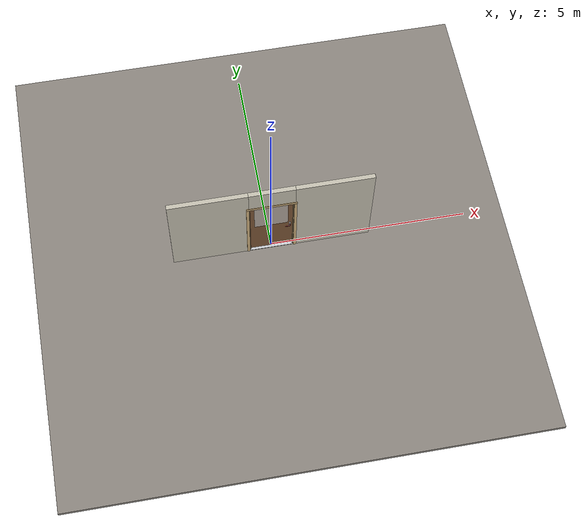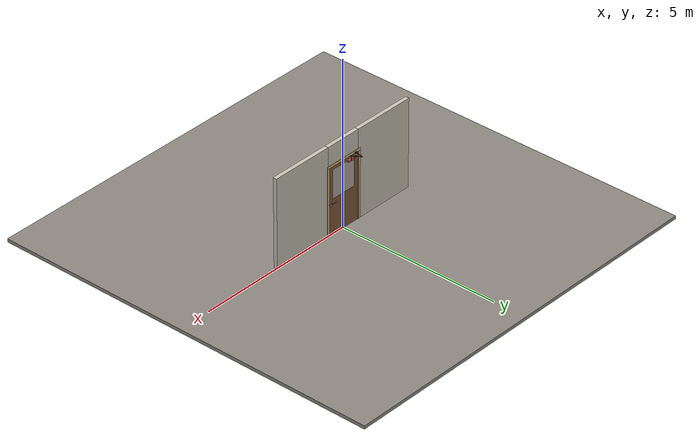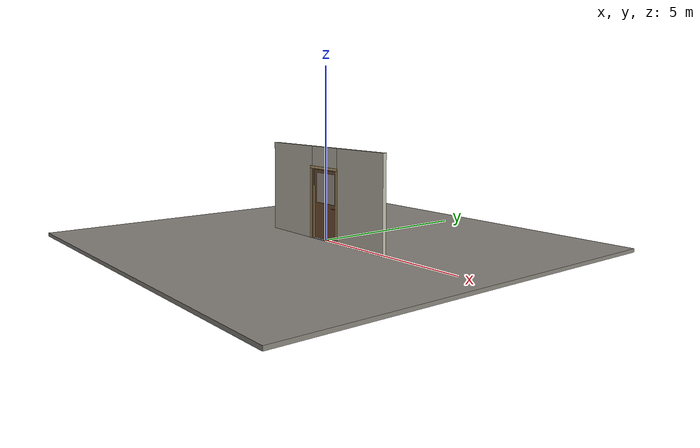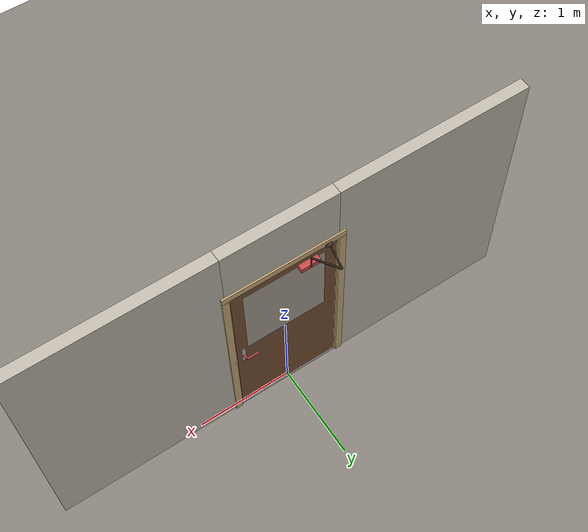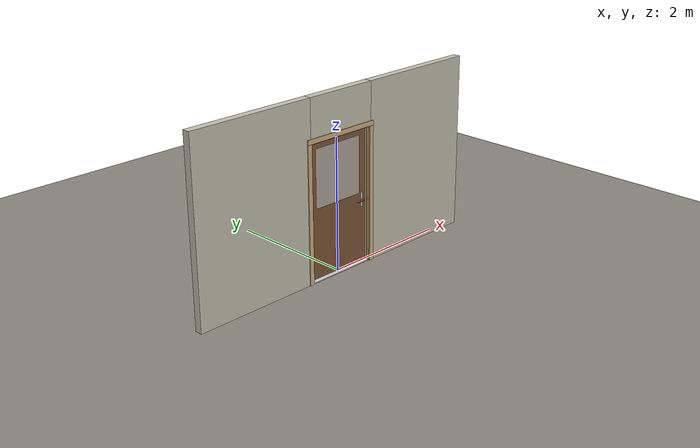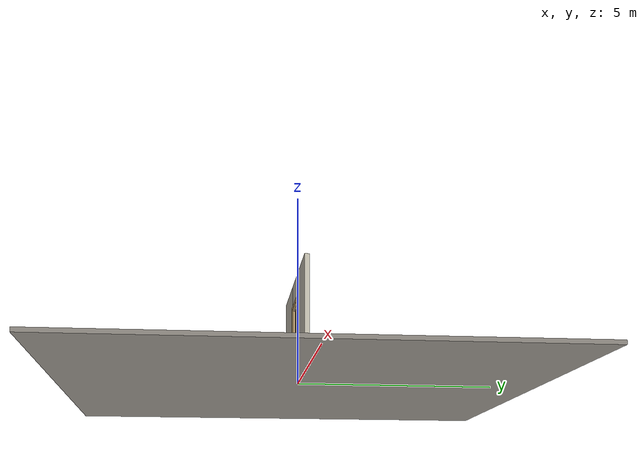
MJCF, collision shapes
<?xml version="1.0" ?>
<mujoco model="db0972_swing_single_full">
  <compiler angle="radian" meshdir="../../hardware" texturedir="../../textures" autolimits="true" inertiafromgeom="false"/>
  <option timestep="0.002" integrator="implicitfast" cone="elliptic" impratio="10" noslip_iterations="3">
    <flag multiccd="enable"/>
  </option>
  <size memory="16M"/>
  <default>
    <geom condim="4" solref="0.005 1" solimp="0.95 0.99 0.001"/>
    <joint solreflimit="0.005 1" solimplimit="0.95 0.99 0.001"/>
    <tendon solreflimit="0.005 1"/>
    <equality solref="0.002 1"/>
  </default>
  <visual>
    <headlight ambient="0.4 0.4 0.4" diffuse="0.7 0.7 0.7" specular="0.2 0.2 0.2"/>
    <quality shadowsize="4096"/>
    <map znear="0.01" zfar="60"/>
  </visual>
  <asset>
    <mesh name="closer_body_78399c60f5" file="closer_body_78399c60f5.obj"/>
    <mesh name="hinge_e22b26c0c1" file="hinge_e22b26c0c1.obj"/>
    <mesh name="hinge_jamb_e1d088f8dc" file="hinge_jamb_e1d088f8dc.obj"/>
    <mesh name="house_numbers_ad0a8e8be0" file="house_numbers_ad0a8e8be0.obj"/>
    <mesh name="lever_f913fc5b7b" file="lever_f913fc5b7b.obj"/>
    <material name="mat_floor" rgba="0.55 0.53 0.5 1" specular="0.2" shininess="0.15" reflectance="0"/>
    <material name="mat_wall" rgba="0.78 0.76 0.7 1" specular="0.2" shininess="0.1" reflectance="0"/>
    <material name="mat_leaf" rgba="0.495 0.341 0.216 1" specular="0.2" shininess="0.5" reflectance="0"/>
    <material name="mat_glass" rgba="0.9 0.93 0.95 0.6" specular="0.2" shininess="0.5" reflectance="0.1"/>
    <material name="mat_hinge" rgba="0.65 0.66 0.68 1" specular="0.74" shininess="0.5" reflectance="0.36"/>
    <material name="mat_op_stainless" rgba="0.75 0.76 0.77 1" specular="0.8" shininess="0.65" reflectance="0.4"/>
    <material name="mat_trim" rgba="0.85 0.66 0.3 1" specular="0.8" shininess="0.75" reflectance="0.4"/>
    <material name="mat_bolt" rgba="0.85 0.66 0.3 1" specular="0.8" shininess="0.75" reflectance="0.4"/>
    <material name="mat_frame" rgba="0.82 0.7 0.5 1" specular="0.2" shininess="0.45" reflectance="0"/>
    <material name="mat_seal" rgba="0.1 0.1 0.1 1" specular="0.2" shininess="0.1" reflectance="0"/>
    <material name="mat_threshold" rgba="0.8 0.81 0.83 1" specular="0.8" shininess="0.6" reflectance="0.4"/>
    <material name="mat_closer" rgba="0.22 0.17 0.13 1" specular="0.8" shininess="0.6" reflectance="0.4"/>
    <material name="mat_numbers" rgba="0.05 0.05 0.05 1" specular="0.38" shininess="0.3" reflectance="0.12"/>
    <texture name="skybox" type="skybox" builtin="gradient" rgb1="0.6 0.7 0.85" rgb2="0.9 0.92 0.95" width="256" height="256"/>
  </asset>
  <worldbody>
    <light name="sun" pos="1.5 -2.5 4" dir="-0.3 0.5 -0.8" directional="true" diffuse="0.8 0.8 0.8" specular="0.3 0.3 0.3" castshadow="true"/>
    <light name="fill" pos="-1.5 2.5 3" dir="0.3 -0.5 -0.7" directional="true" diffuse="0.35 0.35 0.4" castshadow="false"/>
    <camera name="robot_view" pos="0 -2.570688 1.734312" xyaxes="1 0 0 0 0.26963 0.962964" fovy="52"/>
    <camera name="far_view" pos="0 2.513687 1.734312" xyaxes="-1 0 0 0 -0.26963 0.962964" fovy="52"/>
    <camera name="iso" pos="1.932062 -2.163938 2.141063" xyaxes="0.741536 0.670913 0 -0.242917 0.268487 0.932151" fovy="46"/>
    <camera name="detail_handle" pos="0.539 -0.877 1.245" xyaxes="0.97561 0.219512 0 -0.070934 0.315262 0.94635" fovy="38"/>
    <geom name="floor" type="box" size="6 6 0.05" pos="0 0 -0.05" material="mat_floor" group="0" contype="1" conaffinity="1" friction="0.8 0.005 0.0001" density="2400"/>
    <geom name="wall_left" type="box" size="0.972 0.0575 1.35" pos="-1.528 -0.0285 1.35" material="mat_wall" group="0" contype="1" conaffinity="1" friction="0.6 0.005 0.0001" density="800"/>
    <geom name="wall_right" type="box" size="0.957 0.0575 1.35" pos="1.543 -0.0285 1.35" material="mat_wall" group="0" contype="1" conaffinity="1" friction="0.6 0.005 0.0001" density="800"/>
    <geom name="wall_header" type="box" size="0.571 0.0575 0.303" pos="0.015 -0.0285 2.397" material="mat_wall" group="0" contype="1" conaffinity="1" friction="0.6 0.005 0.0001" density="800"/>
    <geom name="hinge_0_jamb" type="mesh" mesh="hinge_jamb_e1d088f8dc" pos="-0.534 0.029 0.267" quat="0 1 0 0" material="mat_hinge" group="1" contype="0" conaffinity="0" density="7850"/>
    <geom name="hinge_1_jamb" type="mesh" mesh="hinge_jamb_e1d088f8dc" pos="-0.534 0.029 1.029" quat="0 1 0 0" material="mat_hinge" group="1" contype="0" conaffinity="0" density="7850"/>
    <geom name="hinge_2_jamb" type="mesh" mesh="hinge_jamb_e1d088f8dc" pos="-0.534 0.029 1.861" quat="0 1 0 0" material="mat_hinge" group="1" contype="0" conaffinity="0" density="7850"/>
    <geom name="jamb_hinge" type="box" size="0.0095 0.0575 1.0225" pos="-0.5465 -0.0285 1.0225" material="mat_frame" group="0" contype="1" conaffinity="1" friction="0.6 0.005 0.0001" density="400"/>
    <geom name="strike_965_wall_n" type="box" size="0.0245 0.039075 0.0167" pos="0.5615 -0.046925 0.965" material="mat_frame" group="0" contype="1" conaffinity="1" friction="0.6 0.005 0.0001" density="400"/>
    <geom name="strike_965_wall_p" type="box" size="0.0245 0.008 0.0167" pos="0.5615 0.01585 0.965" material="mat_frame" group="0" contype="1" conaffinity="1" friction="0.6 0.005 0.0001" density="400"/>
    <geom name="strike_965_ramp" type="box" size="0.0245 0.01649 0.0167" pos="0.566136 0.028673 0.965" quat="0.977148 0 0 -0.212558" material="mat_frame" group="0" contype="1" conaffinity="1" friction="0.12 0.005 0.0001" density="400"/>
    <geom name="strike_965_back" type="box" size="0.01615 0.00785 0.0167" pos="0.56985 0 0.965" material="mat_frame" group="0" contype="1" conaffinity="1" friction="0.6 0.005 0.0001" density="400"/>
    <geom name="jamb_strike_0" type="box" size="0.0245 0.0575 0.47415" pos="0.5615 -0.0285 0.47415" material="mat_frame" group="0" contype="1" conaffinity="1" friction="0.6 0.005 0.0001" density="400"/>
    <geom name="jamb_strike_1" type="box" size="0.0245 0.0575 0.53165" pos="0.5615 -0.0285 1.51335" material="mat_frame" group="0" contype="1" conaffinity="1" friction="0.6 0.005 0.0001" density="400"/>
    <geom name="jamb_head" type="box" size="0.571 0.0575 0.0095" pos="0.015 -0.0285 2.0545" material="mat_frame" group="0" contype="1" conaffinity="1" friction="0.6 0.005 0.0001" density="400"/>
    <geom name="head_stud" type="box" size="0.571 0.0575 0.015" pos="0.015 -0.0285 2.079" material="mat_wall" group="0" contype="1" conaffinity="1" friction="0.6 0.005 0.0001" density="500"/>
    <geom name="stop_hinge" type="box" size="0.0055 0.016 1.0225" pos="-0.5315 -0.0385 1.0225" material="mat_frame" group="0" contype="1" conaffinity="1" friction="0.6 0.005 0.0001" density="400"/>
    <geom name="stop_strike" type="box" size="0.0055 0.016 1.0225" pos="0.5315 -0.0385 1.0225" material="mat_frame" group="0" contype="1" conaffinity="1" friction="0.6 0.005 0.0001" density="400"/>
    <geom name="stop_head" type="box" size="0.537 0.016 0.0055" pos="0 -0.0385 2.0395" material="mat_frame" group="0" contype="1" conaffinity="1" friction="0.6 0.005 0.0001" density="400"/>
    <geom name="seal_hinge" type="box" size="0.004 0.004 1.0225" pos="-0.534 -0.026 1.0225" material="mat_seal" group="1" contype="0" conaffinity="0" density="1100"/>
    <geom name="seal_strike" type="box" size="0.004 0.004 1.0225" pos="0.534 -0.026 1.0225" material="mat_seal" group="1" contype="0" conaffinity="0" density="1100"/>
    <geom name="seal_head" type="box" size="0.517 0.004 0.008" pos="0 -0.026 2.033" material="mat_seal" group="1" contype="0" conaffinity="0" density="1100"/>
    <geom name="casing_l_n" type="box" size="0.035 0.008 1.032" pos="-0.586 -0.094 1.0225" material="mat_frame" group="2" contype="0" conaffinity="0" density="400"/>
    <geom name="casing_r_n" type="box" size="0.035 0.008 1.032" pos="0.586 -0.094 1.0225" material="mat_frame" group="2" contype="0" conaffinity="0" density="400"/>
    <geom name="casing_h_n" type="box" size="0.621 0.008 0.035" pos="0 -0.094 2.094" material="mat_frame" group="2" contype="0" conaffinity="0" density="400"/>
    <geom name="casing_l_p" type="box" size="0.035 0.008 1.032" pos="-0.586 0.037 1.0225" material="mat_frame" group="2" contype="0" conaffinity="0" density="400"/>
    <geom name="casing_r_p" type="box" size="0.035 0.008 1.032" pos="0.586 0.037 1.0225" material="mat_frame" group="2" contype="0" conaffinity="0" density="400"/>
    <geom name="casing_h_p" type="box" size="0.621 0.008 0.035" pos="0 0.037 2.094" material="mat_frame" group="2" contype="0" conaffinity="0" density="400"/>
    <geom name="threshold" type="box" size="0.556 0.0575 0.0065" pos="0 -0.0285 0.0065" material="mat_threshold" group="0" contype="1" conaffinity="1" friction="0.5 0.005 0.0001" density="2700"/>
    <geom name="closer_bracket" type="box" size="0.03 0.012 0.014" pos="-0.437 0.057 2.075" material="mat_closer" group="1" contype="0" conaffinity="0" density="2700"/>
    <site name="approach_point" pos="0 -1.5 0" quat="1 0 0 0" size="0.05" rgba="0.2 0.9 0.2 0.5" group="4"/>
    <site name="goal_point" pos="0 1.5 0" quat="1 0 0 0" size="0.05" rgba="0.2 0.9 0.2 0.5" group="4"/>
    <site name="door_plane_center" pos="0 0 1.0225" quat="1 0 0 0" size="0.02" rgba="0.2 0.9 0.2 0.5" group="4"/>
    <body name="leaf" pos="-0.537 0 0">
      <inertial pos="0.510831 0.004535 1.106421" mass="58.177578" quat="0.514066 0.514028 0.48085 -0.490199" diaginertia="5.451145965 21.992152016 27.403108356"/>
      <joint name="leaf_hinge" type="hinge" axis="0 0 1" pos="0.003 0.029 0" limited="true" range="0 1.745329" solreflimit="0.02 1" damping="6.475663" frictionloss="5.010086" stiffness="8.721691" springref="-1.937698" armature="0.02"/>
      <geom name="leaf_slab" type="box" size="0.5335 0.022 1.012" pos="0.5365 0 1.029" material="mat_leaf" group="0" contype="1" conaffinity="1" friction="0.4 0.005 0.0001" density="1"/>
      <geom name="leaf_glass_0" type="box" size="0.41613 0.0228 0.43516" pos="0.5365 0 1.50464" material="mat_glass" group="1" contype="0" conaffinity="0" density="1"/>
      <geom name="hinge_0" type="mesh" mesh="hinge_e22b26c0c1" pos="0.003 0.029 0.267" quat="0 1 0 0" material="mat_hinge" group="1" contype="0" conaffinity="0" density="7850"/>
      <geom name="hinge_1" type="mesh" mesh="hinge_e22b26c0c1" pos="0.003 0.029 1.029" quat="0 1 0 0" material="mat_hinge" group="1" contype="0" conaffinity="0" density="7850"/>
      <geom name="hinge_2" type="mesh" mesh="hinge_e22b26c0c1" pos="0.003 0.029 1.861" quat="0 1 0 0" material="mat_hinge" group="1" contype="0" conaffinity="0" density="7850"/>
      <geom name="leaf_handle_escutcheon_n" type="box" size="0.02 0.0015 0.11" pos="1 -0.0235 0.965" material="mat_op_stainless" group="1" contype="0" conaffinity="0" density="3000"/>
      <geom name="leaf_handle_escutcheon_p" type="box" size="0.02 0.0015 0.11" pos="1 0.0235 0.965" material="mat_op_stainless" group="1" contype="0" conaffinity="0" density="3000"/>
      <geom name="leaf_latch_bolt_faceplate" type="box" size="0.0006 0.01235 0.0267" pos="1.0694 0 0.965" material="mat_bolt" group="1" contype="0" conaffinity="0" density="8500"/>
      <geom name="closer_body" type="mesh" mesh="closer_body_78399c60f5" pos="0.3 0.022 1.944" quat="-0.707107 0.707107 0 0" material="mat_closer" group="1" contype="0" conaffinity="0" density="2000"/>
      <geom name="closer_body_col" type="box" size="0.1 0.03 0.025" pos="0.3 0.052 1.944" material="mat_closer" group="3" contype="1" conaffinity="1" rgba="0.8 0.3 0.3 0.25" friction="0.6 0.005 0.0001" density="2000"/>
      <geom name="closer_pinion_shaft" type="cylinder" size="0.008 0.0655" pos="0.3 0.08 2.0095" material="mat_closer" group="1" contype="0" conaffinity="0" density="2700"/>
      <geom name="house_numbers" type="mesh" mesh="house_numbers_ad0a8e8be0" pos="0.5365 -0.022 1.691" quat="0.707107 0.707107 0 0" material="mat_numbers" group="2" contype="0" conaffinity="0" density="1000"/>
      <site name="leaf_edge_mid" pos="1.07 0 1.012" quat="1 0 0 0" size="0.02" rgba="0.2 0.9 0.2 0.5" group="4"/>
      <body name="leaf_handle" pos="1 0 0.965">
        <inertial pos="-0.038995 0 0" mass="0.772658" quat="0.707107 0 0 -0.707107" diaginertia="0.001545312 0.003473151 0.004979007"/>
        <joint name="leaf_handle_hinge" type="hinge" axis="0 -1 0" limited="true" range="0 0.65" damping="0.225568" frictionloss="0.051863" stiffness="1" springref="-0.503022" armature="0.01"/>
        <geom name="leaf_handle_spindle" type="cylinder" size="0.006 0.034" pos="0 0 0" quat="0.707107 -0.707107 0 0" material="mat_op_stainless" group="1" contype="0" conaffinity="0" density="7850"/>
        <geom name="leaf_handle_lever_n" type="mesh" mesh="lever_f913fc5b7b" pos="0 -0.022 0" quat="0.707107 0.707107 0 0" material="mat_op_stainless" group="1" contype="0" conaffinity="0" density="3000"/>
        <geom name="leaf_handle_lever_col_n" type="capsule" size="0.0095 0.0555" pos="-0.065 -0.077 0" quat="0.707107 0 -0.707107 0" material="mat_op_stainless" group="3" contype="1" conaffinity="1" rgba="0.8 0.3 0.3 0.25" friction="0.7 0.01 0.0001" density="3000"/>
        <geom name="leaf_handle_hub_col_n" type="cylinder" size="0.012 0.022" pos="0 -0.052 0" quat="0.707107 -0.707107 0 0" material="mat_op_stainless" group="3" contype="1" conaffinity="1" rgba="0.8 0.3 0.3 0.25" friction="0.6 0.005 0.0001" density="3000"/>
        <geom name="leaf_handle_lever_p" type="mesh" mesh="lever_f913fc5b7b" pos="0 0.022 0" quat="-0.707107 0.707107 0 0" material="mat_op_stainless" group="1" contype="0" conaffinity="0" density="3000"/>
        <geom name="leaf_handle_lever_col_p" type="capsule" size="0.0095 0.0555" pos="-0.065 0.077 0" quat="0.707107 0 -0.707107 0" material="mat_op_stainless" group="3" contype="1" conaffinity="1" rgba="0.8 0.3 0.3 0.25" friction="0.7 0.01 0.0001" density="3000"/>
        <geom name="leaf_handle_hub_col_p" type="cylinder" size="0.012 0.022" pos="0 0.052 0" quat="0.707107 -0.707107 0 0" material="mat_op_stainless" group="3" contype="1" conaffinity="1" rgba="0.8 0.3 0.3 0.25" friction="0.6 0.005 0.0001" density="3000"/>
        <site name="leaf_handle_grip_n" pos="-0.104 -0.077 0" quat="1 0 0 0" size="0.012" rgba="0.2 0.9 0.2 0.5" group="4"/>
        <site name="leaf_handle_grip_p" pos="-0.104 0.077 0" quat="1 0 0 0" size="0.012" rgba="0.2 0.9 0.2 0.5" group="4"/>
      </body>
      <body name="leaf_latch_bolt" pos="1.07 0 0.965">
        <inertial pos="-0.00865 0 0" mass="0.041419" quat="0.92388 -0.382683 0 0" diaginertia="0.000000798 0.000005598 0.000005598"/>
        <joint name="leaf_latch_bolt_slide" type="slide" axis="-1 0 0" limited="true" range="0 0.0127" damping="2" frictionloss="0.3" stiffness="300" springref="-0.008333" armature="0.1"/>
        <geom name="leaf_latch_bolt_capsule" type="capsule" size="0.00635 0.015" pos="-0.00865 0 0" quat="0.707107 0 0.707107 0" material="mat_bolt" group="0" contype="1" conaffinity="1" friction="0.2 0.005 0.0001" density="8500"/>
      </body>
      <body name="closer_arm_main" pos="0.3 0.08 2.075" quat="0.472212 0 0 0.881485">
        <inertial pos="0.14 0 0" mass="0.12096" quat="1 0 0 0" diaginertia="0.000003588 0.00079128 0.000792852"/>
        <joint name="closer_pinion" type="hinge" axis="0 0 1" limited="false" damping="0.01" armature="0.002"/>
        <geom name="closer_arm_main_geom" type="box" size="0.14 0.008 0.005" pos="0.14 0 0" material="mat_closer" group="1" contype="0" conaffinity="0" density="2700"/>
        <body name="closer_arm_fore" pos="0.28 0 0" quat="-0.371222 0 0 -0.928544">
          <inertial pos="0.128088 0 0" mass="0.076531" quat="1 0 0 0" diaginertia="0.000001771 0.000437665 0.000438201"/>
          <joint name="closer_elbow" type="hinge" axis="0 0 1" limited="false" damping="0.01" armature="0.002"/>
          <geom name="closer_arm_fore_geom" type="box" size="0.1125 0.007 0.004" pos="0.1125 0 0" material="mat_closer" group="1" contype="0" conaffinity="0" density="2700"/>
          <geom name="closer_fore_neck" type="box" size="0.0175 0.003 0.003" pos="0.2425 0 0" material="mat_closer" group="1" contype="0" conaffinity="0" density="2700"/>
          <geom name="closer_fore_pivot" type="cylinder" size="0.005 0.012" pos="0.26 0 0" material="mat_closer" group="1" contype="0" conaffinity="0" density="2700"/>
        </body>
      </body>
    </body>
  </worldbody>
  <tendon>
    <fixed name="leaf_latch_bolt_coupling" limited="true" range="0 10">
      <joint joint="leaf_latch_bolt_slide" coef="1"/>
      <joint joint="leaf_handle_hinge" coef="-0.02082"/>
    </fixed>
  </tendon>
  <equality>
    <connect name="closer_arm_connect" body1="closer_arm_fore" body2="world" anchor="0.26 0 0" active="true"/>
  </equality>
  <contact>
    <exclude body1="closer_arm_main" body2="leaf"/>
    <exclude body1="closer_arm_fore" body2="leaf"/>
    <exclude body1="closer_arm_main" body2="closer_arm_fore"/>
  </contact>
  <sensor>
    <jointpos name="leaf_hinge_pos" joint="leaf_hinge"/>
    <jointvel name="leaf_hinge_vel" joint="leaf_hinge"/>
    <jointpos name="leaf_handle_hinge_pos" joint="leaf_handle_hinge"/>
    <jointvel name="leaf_handle_hinge_vel" joint="leaf_handle_hinge"/>
    <jointpos name="leaf_latch_bolt_slide_pos" joint="leaf_latch_bolt_slide"/>
    <jointvel name="leaf_latch_bolt_slide_vel" joint="leaf_latch_bolt_slide"/>
  </sensor>
</mujoco>
